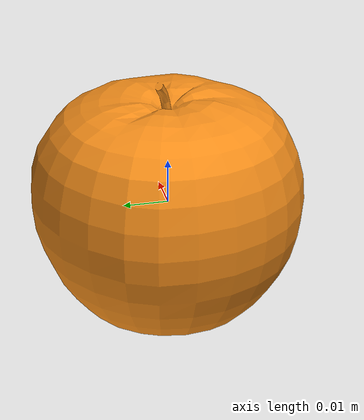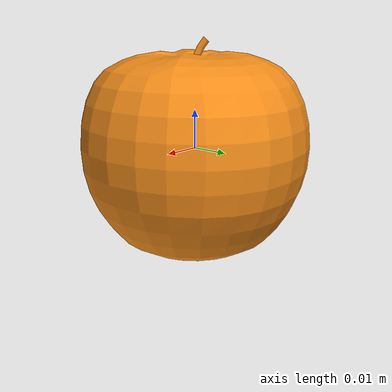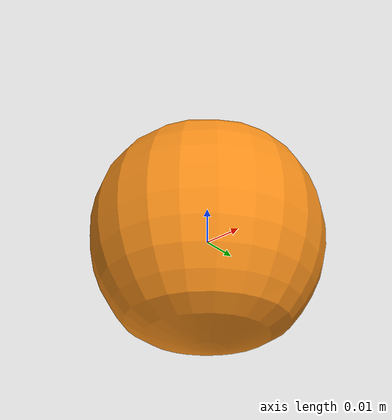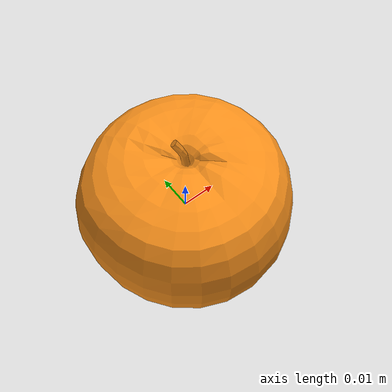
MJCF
<mujoco model="orange_2">
  <asset>
    <texture file="/home/abhiram03/Desktop/mimicgen/robosuite-kitchen/robosuite/models/assets/textures/ceramic.png" name="tex-orange_2" type="2d"/>
    <material name="orange_2" reflectance="0.5" texrepeat="1 1" texture="tex-orange_2" texuniform="false"/>
    <mesh file="visual/model_normalized_0.obj" name="model_normalized_0_vis" scale="0.06000000000000002 0.06000000000000002 0.06000000000000002" refquat="1.0 0.0 0.0 0.0"/>
    <mesh file="collision/model_normalized_collision_13.obj" name="model_normalized_collision_13._coll" scale="0.06000000000000002 0.06000000000000002 0.06000000000000002" refquat="1.0 0.0 0.0 0.0"/>
    <mesh file="collision/model_normalized_collision_15.obj" name="model_normalized_collision_15._coll" scale="0.06000000000000002 0.06000000000000002 0.06000000000000002" refquat="1.0 0.0 0.0 0.0"/>
    <mesh file="collision/model_normalized_collision_10.obj" name="model_normalized_collision_10._coll" scale="0.06000000000000002 0.06000000000000002 0.06000000000000002" refquat="1.0 0.0 0.0 0.0"/>
    <mesh file="collision/model_normalized_collision_26.obj" name="model_normalized_collision_26._coll" scale="0.06000000000000002 0.06000000000000002 0.06000000000000002" refquat="1.0 0.0 0.0 0.0"/>
    <mesh file="collision/model_normalized_collision_25.obj" name="model_normalized_collision_25._coll" scale="0.06000000000000002 0.06000000000000002 0.06000000000000002" refquat="1.0 0.0 0.0 0.0"/>
    <mesh file="collision/model_normalized_collision_5.obj" name="model_normalized_collision_5._coll" scale="0.06000000000000002 0.06000000000000002 0.06000000000000002" refquat="1.0 0.0 0.0 0.0"/>
    <mesh file="collision/model_normalized_collision_31.obj" name="model_normalized_collision_31._coll" scale="0.06000000000000002 0.06000000000000002 0.06000000000000002" refquat="1.0 0.0 0.0 0.0"/>
    <mesh file="collision/model_normalized_collision_3.obj" name="model_normalized_collision_3._coll" scale="0.06000000000000002 0.06000000000000002 0.06000000000000002" refquat="1.0 0.0 0.0 0.0"/>
    <mesh file="collision/model_normalized_collision_14.obj" name="model_normalized_collision_14._coll" scale="0.06000000000000002 0.06000000000000002 0.06000000000000002" refquat="1.0 0.0 0.0 0.0"/>
    <mesh file="collision/model_normalized_collision_28.obj" name="model_normalized_collision_28._coll" scale="0.06000000000000002 0.06000000000000002 0.06000000000000002" refquat="1.0 0.0 0.0 0.0"/>
    <mesh file="collision/model_normalized_collision_11.obj" name="model_normalized_collision_11._coll" scale="0.06000000000000002 0.06000000000000002 0.06000000000000002" refquat="1.0 0.0 0.0 0.0"/>
    <mesh file="collision/model_normalized_collision_29.obj" name="model_normalized_collision_29._coll" scale="0.06000000000000002 0.06000000000000002 0.06000000000000002" refquat="1.0 0.0 0.0 0.0"/>
    <mesh file="collision/model_normalized_collision_24.obj" name="model_normalized_collision_24._coll" scale="0.06000000000000002 0.06000000000000002 0.06000000000000002" refquat="1.0 0.0 0.0 0.0"/>
    <mesh file="collision/model_normalized_collision_1.obj" name="model_normalized_collision_1._coll" scale="0.06000000000000002 0.06000000000000002 0.06000000000000002" refquat="1.0 0.0 0.0 0.0"/>
    <mesh file="collision/model_normalized_collision_0.obj" name="model_normalized_collision_0._coll" scale="0.06000000000000002 0.06000000000000002 0.06000000000000002" refquat="1.0 0.0 0.0 0.0"/>
    <mesh file="collision/model_normalized_collision_27.obj" name="model_normalized_collision_27._coll" scale="0.06000000000000002 0.06000000000000002 0.06000000000000002" refquat="1.0 0.0 0.0 0.0"/>
    <mesh file="collision/model_normalized_collision_9.obj" name="model_normalized_collision_9._coll" scale="0.06000000000000002 0.06000000000000002 0.06000000000000002" refquat="1.0 0.0 0.0 0.0"/>
    <mesh file="collision/model_normalized_collision_19.obj" name="model_normalized_collision_19._coll" scale="0.06000000000000002 0.06000000000000002 0.06000000000000002" refquat="1.0 0.0 0.0 0.0"/>
    <mesh file="collision/model_normalized_collision_21.obj" name="model_normalized_collision_21._coll" scale="0.06000000000000002 0.06000000000000002 0.06000000000000002" refquat="1.0 0.0 0.0 0.0"/>
    <mesh file="collision/model_normalized_collision_30.obj" name="model_normalized_collision_30._coll" scale="0.06000000000000002 0.06000000000000002 0.06000000000000002" refquat="1.0 0.0 0.0 0.0"/>
    <mesh file="collision/model_normalized_collision_20.obj" name="model_normalized_collision_20._coll" scale="0.06000000000000002 0.06000000000000002 0.06000000000000002" refquat="1.0 0.0 0.0 0.0"/>
    <mesh file="collision/model_normalized_collision_2.obj" name="model_normalized_collision_2._coll" scale="0.06000000000000002 0.06000000000000002 0.06000000000000002" refquat="1.0 0.0 0.0 0.0"/>
    <mesh file="collision/model_normalized_collision_7.obj" name="model_normalized_collision_7._coll" scale="0.06000000000000002 0.06000000000000002 0.06000000000000002" refquat="1.0 0.0 0.0 0.0"/>
    <mesh file="collision/model_normalized_collision_22.obj" name="model_normalized_collision_22._coll" scale="0.06000000000000002 0.06000000000000002 0.06000000000000002" refquat="1.0 0.0 0.0 0.0"/>
    <mesh file="collision/model_normalized_collision_16.obj" name="model_normalized_collision_16._coll" scale="0.06000000000000002 0.06000000000000002 0.06000000000000002" refquat="1.0 0.0 0.0 0.0"/>
    <mesh file="collision/model_normalized_collision_8.obj" name="model_normalized_collision_8._coll" scale="0.06000000000000002 0.06000000000000002 0.06000000000000002" refquat="1.0 0.0 0.0 0.0"/>
    <mesh file="collision/model_normalized_collision_6.obj" name="model_normalized_collision_6._coll" scale="0.06000000000000002 0.06000000000000002 0.06000000000000002" refquat="1.0 0.0 0.0 0.0"/>
    <mesh file="collision/model_normalized_collision_18.obj" name="model_normalized_collision_18._coll" scale="0.06000000000000002 0.06000000000000002 0.06000000000000002" refquat="1.0 0.0 0.0 0.0"/>
    <mesh file="collision/model_normalized_collision_17.obj" name="model_normalized_collision_17._coll" scale="0.06000000000000002 0.06000000000000002 0.06000000000000002" refquat="1.0 0.0 0.0 0.0"/>
    <mesh file="collision/model_normalized_collision_12.obj" name="model_normalized_collision_12._coll" scale="0.06000000000000002 0.06000000000000002 0.06000000000000002" refquat="1.0 0.0 0.0 0.0"/>
    <mesh file="collision/model_normalized_collision_4.obj" name="model_normalized_collision_4._coll" scale="0.06000000000000002 0.06000000000000002 0.06000000000000002" refquat="1.0 0.0 0.0 0.0"/>
    <mesh file="collision/model_normalized_collision_23.obj" name="model_normalized_collision_23._coll" scale="0.06000000000000002 0.06000000000000002 0.06000000000000002" refquat="1.0 0.0 0.0 0.0"/>
    <texture type="2d" name="8d24ff953ed2_orange__3d_asset_0__texture_kd" file="visual/8d24ff953ed2_orange__3d_asset_0__texture_kd.png"/>
    <material name="Material_0" texture="8d24ff953ed2_orange__3d_asset_0__texture_kd" specular="0.5" shininess="0.5"/>
  </asset>
  <worldbody>
    <body>
      <body name="object">
        <geom solimp="0.998 0.998 0.001" solref="0.001 1" density="100" friction="0.95 0.3 0.1" type="mesh" mesh="model_normalized_0_vis" conaffinity="0" contype="0" group="1" material="Material_0"/>
        <geom solimp="0.998 0.998 0.001" solref="0.001 1" density="100" friction="0.95 0.3 0.1" type="mesh" mesh="model_normalized_collision_13._coll" group="0" rgba="0.8 0.8 0.8 0.0"/>
        <geom solimp="0.998 0.998 0.001" solref="0.001 1" density="100" friction="0.95 0.3 0.1" type="mesh" mesh="model_normalized_collision_15._coll" group="0" rgba="0.8 0.8 0.8 0.0"/>
        <geom solimp="0.998 0.998 0.001" solref="0.001 1" density="100" friction="0.95 0.3 0.1" type="mesh" mesh="model_normalized_collision_10._coll" group="0" rgba="0.8 0.8 0.8 0.0"/>
        <geom solimp="0.998 0.998 0.001" solref="0.001 1" density="100" friction="0.95 0.3 0.1" type="mesh" mesh="model_normalized_collision_26._coll" group="0" rgba="0.8 0.8 0.8 0.0"/>
        <geom solimp="0.998 0.998 0.001" solref="0.001 1" density="100" friction="0.95 0.3 0.1" type="mesh" mesh="model_normalized_collision_25._coll" group="0" rgba="0.8 0.8 0.8 0.0"/>
        <geom solimp="0.998 0.998 0.001" solref="0.001 1" density="100" friction="0.95 0.3 0.1" type="mesh" mesh="model_normalized_collision_5._coll" group="0" rgba="0.8 0.8 0.8 0.0"/>
        <geom solimp="0.998 0.998 0.001" solref="0.001 1" density="100" friction="0.95 0.3 0.1" type="mesh" mesh="model_normalized_collision_31._coll" group="0" rgba="0.8 0.8 0.8 0.0"/>
        <geom solimp="0.998 0.998 0.001" solref="0.001 1" density="100" friction="0.95 0.3 0.1" type="mesh" mesh="model_normalized_collision_3._coll" group="0" rgba="0.8 0.8 0.8 0.0"/>
        <geom solimp="0.998 0.998 0.001" solref="0.001 1" density="100" friction="0.95 0.3 0.1" type="mesh" mesh="model_normalized_collision_14._coll" group="0" rgba="0.8 0.8 0.8 0.0"/>
        <geom solimp="0.998 0.998 0.001" solref="0.001 1" density="100" friction="0.95 0.3 0.1" type="mesh" mesh="model_normalized_collision_28._coll" group="0" rgba="0.8 0.8 0.8 0.0"/>
        <geom solimp="0.998 0.998 0.001" solref="0.001 1" density="100" friction="0.95 0.3 0.1" type="mesh" mesh="model_normalized_collision_11._coll" group="0" rgba="0.8 0.8 0.8 0.0"/>
        <geom solimp="0.998 0.998 0.001" solref="0.001 1" density="100" friction="0.95 0.3 0.1" type="mesh" mesh="model_normalized_collision_29._coll" group="0" rgba="0.8 0.8 0.8 0.0"/>
        <geom solimp="0.998 0.998 0.001" solref="0.001 1" density="100" friction="0.95 0.3 0.1" type="mesh" mesh="model_normalized_collision_24._coll" group="0" rgba="0.8 0.8 0.8 0.0"/>
        <geom solimp="0.998 0.998 0.001" solref="0.001 1" density="100" friction="0.95 0.3 0.1" type="mesh" mesh="model_normalized_collision_1._coll" group="0" rgba="0.8 0.8 0.8 0.0"/>
        <geom solimp="0.998 0.998 0.001" solref="0.001 1" density="100" friction="0.95 0.3 0.1" type="mesh" mesh="model_normalized_collision_0._coll" group="0" rgba="0.8 0.8 0.8 0.0"/>
        <geom solimp="0.998 0.998 0.001" solref="0.001 1" density="100" friction="0.95 0.3 0.1" type="mesh" mesh="model_normalized_collision_27._coll" group="0" rgba="0.8 0.8 0.8 0.0"/>
        <geom solimp="0.998 0.998 0.001" solref="0.001 1" density="100" friction="0.95 0.3 0.1" type="mesh" mesh="model_normalized_collision_9._coll" group="0" rgba="0.8 0.8 0.8 0.0"/>
        <geom solimp="0.998 0.998 0.001" solref="0.001 1" density="100" friction="0.95 0.3 0.1" type="mesh" mesh="model_normalized_collision_19._coll" group="0" rgba="0.8 0.8 0.8 0.0"/>
        <geom solimp="0.998 0.998 0.001" solref="0.001 1" density="100" friction="0.95 0.3 0.1" type="mesh" mesh="model_normalized_collision_21._coll" group="0" rgba="0.8 0.8 0.8 0.0"/>
        <geom solimp="0.998 0.998 0.001" solref="0.001 1" density="100" friction="0.95 0.3 0.1" type="mesh" mesh="model_normalized_collision_30._coll" group="0" rgba="0.8 0.8 0.8 0.0"/>
        <geom solimp="0.998 0.998 0.001" solref="0.001 1" density="100" friction="0.95 0.3 0.1" type="mesh" mesh="model_normalized_collision_20._coll" group="0" rgba="0.8 0.8 0.8 0.0"/>
        <geom solimp="0.998 0.998 0.001" solref="0.001 1" density="100" friction="0.95 0.3 0.1" type="mesh" mesh="model_normalized_collision_2._coll" group="0" rgba="0.8 0.8 0.8 0.0"/>
        <geom solimp="0.998 0.998 0.001" solref="0.001 1" density="100" friction="0.95 0.3 0.1" type="mesh" mesh="model_normalized_collision_7._coll" group="0" rgba="0.8 0.8 0.8 0.0"/>
        <geom solimp="0.998 0.998 0.001" solref="0.001 1" density="100" friction="0.95 0.3 0.1" type="mesh" mesh="model_normalized_collision_22._coll" group="0" rgba="0.8 0.8 0.8 0.0"/>
        <geom solimp="0.998 0.998 0.001" solref="0.001 1" density="100" friction="0.95 0.3 0.1" type="mesh" mesh="model_normalized_collision_16._coll" group="0" rgba="0.8 0.8 0.8 0.0"/>
        <geom solimp="0.998 0.998 0.001" solref="0.001 1" density="100" friction="0.95 0.3 0.1" type="mesh" mesh="model_normalized_collision_8._coll" group="0" rgba="0.8 0.8 0.8 0.0"/>
        <geom solimp="0.998 0.998 0.001" solref="0.001 1" density="100" friction="0.95 0.3 0.1" type="mesh" mesh="model_normalized_collision_6._coll" group="0" rgba="0.8 0.8 0.8 0.0"/>
        <geom solimp="0.998 0.998 0.001" solref="0.001 1" density="100" friction="0.95 0.3 0.1" type="mesh" mesh="model_normalized_collision_18._coll" group="0" rgba="0.8 0.8 0.8 0.0"/>
        <geom solimp="0.998 0.998 0.001" solref="0.001 1" density="100" friction="0.95 0.3 0.1" type="mesh" mesh="model_normalized_collision_17._coll" group="0" rgba="0.8 0.8 0.8 0.0"/>
        <geom solimp="0.998 0.998 0.001" solref="0.001 1" density="100" friction="0.95 0.3 0.1" type="mesh" mesh="model_normalized_collision_12._coll" group="0" rgba="0.8 0.8 0.8 0.0"/>
        <geom solimp="0.998 0.998 0.001" solref="0.001 1" density="100" friction="0.95 0.3 0.1" type="mesh" mesh="model_normalized_collision_4._coll" group="0" rgba="0.8 0.8 0.8 0.0"/>
        <geom solimp="0.998 0.998 0.001" solref="0.001 1" density="100" friction="0.95 0.3 0.1" type="mesh" mesh="model_normalized_collision_23._coll" group="0" rgba="0.8 0.8 0.8 0.0"/>
      </body>
      <site rgba="0 0 0 0" size="0.005" pos="0.0 0.00012127589999999969 -0.018779024400000004" name="bottom_site"/>
      <site rgba="0 0 0 0" size="0.005" pos="0.0 0.00012127589999999969 0.018493701600000006" name="top_site"/>
      <site rgba="0 0 0 0" size="0.005" pos="0.030454544400000012 0.030121275000000006 -0.00014266140000000099" name="horizontal_radius_site"/>
    </body>
  </worldbody>
</mujoco>
